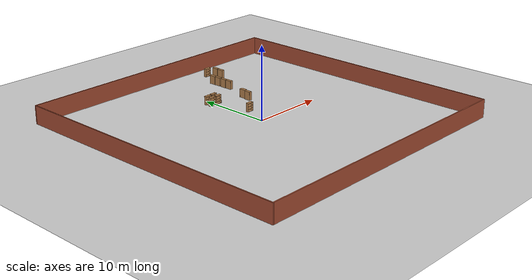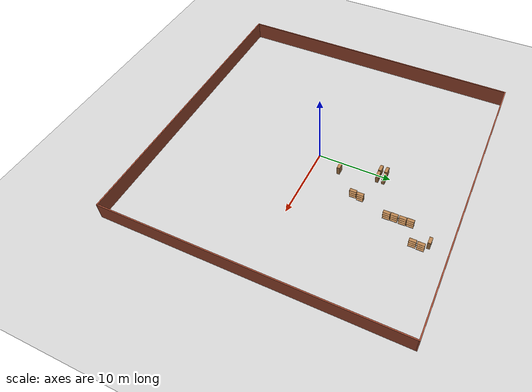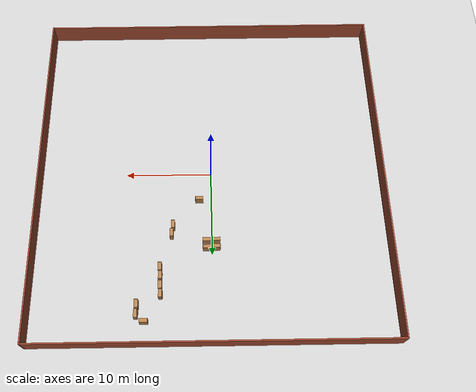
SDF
<sdf version="1.6">
 <world name="default">
  <model name="ground_plane">
   <static>1</static>
   <link name="link">
    <collision name="collision">
     <geometry><plane><normal>0 0 1</normal><size>100 100</size></plane></geometry>
     <surface>
      <contact><collide_bitmask>65535</collide_bitmask></contact>
      <friction><ode><mu>100</mu><mu2>50</mu2></ode></friction>
     </surface>
    </collision>
    <visual name="visual">
     <cast_shadows>0</cast_shadows>
     <geometry><plane><normal>0 0 1</normal><size>100 100</size></plane></geometry>
     <material>
      <script><uri>file://media/materials/scripts/gazebo.material</uri><name>Gazebo/Grey</name></script>
     </material>
    </visual>
   </link>
  </model>
  <model name="bookshelf_clone_clone_0_clone_clone_0_clone_2_clone">
   <static>1</static>
   <link name="link">
    <inertial><mass>1</mass></inertial>
    <collision name="back">
     <pose>0 0.005 0.6 0 -0 0</pose>
     <geometry><box><size>0.9 0.01 1.2</size></box></geometry>
    </collision>
    <visual name="visual1">
     <pose>0 0.005 0.6 0 -0 0</pose>
     <geometry><box><size>0.9 0.01 1.2</size></box></geometry>
     <material>
      <script><uri>file://media/materials/scripts/gazebo.material</uri><name>Gazebo/Wood</name></script>
     </material>
    </visual>
    <collision name="left_side">
     <pose>0.45 -0.195 0.6 0 -0 0</pose>
     <geometry><box><size>0.02 0.4 1.2</size></box></geometry>
    </collision>
    <visual name="visual2">
     <pose>0.45 -0.195 0.6 0 -0 0</pose>
     <geometry><box><size>0.02 0.4 1.2</size></box></geometry>
     <material>
      <script><uri>file://media/materials/scripts/gazebo.material</uri><name>Gazebo/Wood</name></script>
     </material>
    </visual>
    <collision name="right_side">
     <pose>-0.45 -0.195 0.6 0 -0 0</pose>
     <geometry><box><size>0.02 0.4 1.2</size></box></geometry>
    </collision>
    <visual name="visual3">
     <pose>-0.45 -0.195 0.6 0 -0 0</pose>
     <geometry><box><size>0.02 0.4 1.2</size></box></geometry>
     <material>
      <script><uri>file://media/materials/scripts/gazebo.material</uri><name>Gazebo/Wood</name></script>
     </material>
    </visual>
    <collision name="bottom">
     <pose>0 -0.195 0.03 0 -0 0</pose>
     <geometry><box><size>0.88 0.4 0.06</size></box></geometry>
    </collision>
    <visual name="visual4">
     <pose>0 -0.195 0.03 0 -0 0</pose>
     <geometry><box><size>0.88 0.4 0.06</size></box></geometry>
     <material>
      <script><uri>file://media/materials/scripts/gazebo.material</uri><name>Gazebo/Wood</name></script>
     </material>
    </visual>
    <collision name="top">
     <pose>0 -0.195 1.19 0 -0 0</pose>
     <geometry><box><size>0.88 0.4 0.02</size></box></geometry>
    </collision>
    <visual name="visual5">
     <pose>0 -0.195 1.19 0 -0 0</pose>
     <geometry><box><size>0.88 0.4 0.02</size></box></geometry>
     <material>
      <script><uri>file://media/materials/scripts/gazebo.material</uri><name>Gazebo/Wood</name></script>
     </material>
    </visual>
    <collision name="low_shelf">
     <pose>0 -0.195 0.43 0 -0 0</pose>
     <geometry><box><size>0.88 0.4 0.02</size></box></geometry>
    </collision>
    <visual name="visual6">
     <pose>0 -0.195 0.43 0 -0 0</pose>
     <geometry><box><size>0.88 0.4 0.02</size></box></geometry>
     <material>
      <script><uri>file://media/materials/scripts/gazebo.material</uri><name>Gazebo/Wood</name></script>
     </material>
    </visual>
    <collision name="high_shelf">
     <pose>0 -0.195 0.8 0 -0 0</pose>
     <geometry><box><size>0.88 0.4 0.02</size></box></geometry>
    </collision>
    <visual name="visual7">
     <pose>0 -0.195 0.8 0 -0 0</pose>
     <geometry><box><size>0.88 0.4 0.02</size></box></geometry>
     <material>
      <script><uri>file://media/materials/scripts/gazebo.material</uri><name>Gazebo/Wood</name></script>
     </material>
    </visual>
   </link>
   <pose>4.39037 7.62283 0 0 -0 1.58018</pose>
  </model>
  <model name="bookshelf_clone_clone_0_clone_clone_0_clone_2_clone_0">
   <static>1</static>
   <link name="link">
    <inertial><mass>1</mass></inertial>
    <collision name="back">
     <pose>0 0.005 0.6 0 -0 0</pose>
     <geometry><box><size>0.9 0.01 1.2</size></box></geometry>
    </collision>
    <visual name="visual1">
     <pose>0 0.005 0.6 0 -0 0</pose>
     <geometry><box><size>0.9 0.01 1.2</size></box></geometry>
     <material>
      <script><uri>file://media/materials/scripts/gazebo.material</uri><name>Gazebo/Wood</name></script>
     </material>
    </visual>
    <collision name="left_side">
     <pose>0.45 -0.195 0.6 0 -0 0</pose>
     <geometry><box><size>0.02 0.4 1.2</size></box></geometry>
    </collision>
    <visual name="visual2">
     <pose>0.45 -0.195 0.6 0 -0 0</pose>
     <geometry><box><size>0.02 0.4 1.2</size></box></geometry>
     <material>
      <script><uri>file://media/materials/scripts/gazebo.material</uri><name>Gazebo/Wood</name></script>
     </material>
    </visual>
    <collision name="right_side">
     <pose>-0.45 -0.195 0.6 0 -0 0</pose>
     <geometry><box><size>0.02 0.4 1.2</size></box></geometry>
    </collision>
    <visual name="visual3">
     <pose>-0.45 -0.195 0.6 0 -0 0</pose>
     <geometry><box><size>0.02 0.4 1.2</size></box></geometry>
     <material>
      <script><uri>file://media/materials/scripts/gazebo.material</uri><name>Gazebo/Wood</name></script>
     </material>
    </visual>
    <collision name="bottom">
     <pose>0 -0.195 0.03 0 -0 0</pose>
     <geometry><box><size>0.88 0.4 0.06</size></box></geometry>
    </collision>
    <visual name="visual4">
     <pose>0 -0.195 0.03 0 -0 0</pose>
     <geometry><box><size>0.88 0.4 0.06</size></box></geometry>
     <material>
      <script><uri>file://media/materials/scripts/gazebo.material</uri><name>Gazebo/Wood</name></script>
     </material>
    </visual>
    <collision name="top">
     <pose>0 -0.195 1.19 0 -0 0</pose>
     <geometry><box><size>0.88 0.4 0.02</size></box></geometry>
    </collision>
    <visual name="visual5">
     <pose>0 -0.195 1.19 0 -0 0</pose>
     <geometry><box><size>0.88 0.4 0.02</size></box></geometry>
     <material>
      <script><uri>file://media/materials/scripts/gazebo.material</uri><name>Gazebo/Wood</name></script>
     </material>
    </visual>
    <collision name="low_shelf">
     <pose>0 -0.195 0.43 0 -0 0</pose>
     <geometry><box><size>0.88 0.4 0.02</size></box></geometry>
    </collision>
    <visual name="visual6">
     <pose>0 -0.195 0.43 0 -0 0</pose>
     <geometry><box><size>0.88 0.4 0.02</size></box></geometry>
     <material>
      <script><uri>file://media/materials/scripts/gazebo.material</uri><name>Gazebo/Wood</name></script>
     </material>
    </visual>
    <collision name="high_shelf">
     <pose>0 -0.195 0.8 0 -0 0</pose>
     <geometry><box><size>0.88 0.4 0.02</size></box></geometry>
    </collision>
    <visual name="visual7">
     <pose>0 -0.195 0.8 0 -0 0</pose>
     <geometry><box><size>0.88 0.4 0.02</size></box></geometry>
     <material>
      <script><uri>file://media/materials/scripts/gazebo.material</uri><name>Gazebo/Wood</name></script>
     </material>
    </visual>
   </link>
   <pose>4.23583 6.61207 0 0 -0 1.58018</pose>
  </model>
  <model name="bookshelf_clone_clone_2_clone_2_clone">
   <static>1</static>
   <link name="link">
    <inertial><mass>1</mass></inertial>
    <collision name="back">
     <pose>0 0.005 0.6 0 -0 0</pose>
     <geometry><box><size>0.9 0.01 1.2</size></box></geometry>
    </collision>
    <visual name="visual1">
     <pose>0 0.005 0.6 0 -0 0</pose>
     <geometry><box><size>0.9 0.01 1.2</size></box></geometry>
     <material>
      <script><uri>file://media/materials/scripts/gazebo.material</uri><name>Gazebo/Wood</name></script>
     </material>
    </visual>
    <collision name="left_side">
     <pose>0.45 -0.195 0.6 0 -0 0</pose>
     <geometry><box><size>0.02 0.4 1.2</size></box></geometry>
    </collision>
    <visual name="visual2">
     <pose>0.45 -0.195 0.6 0 -0 0</pose>
     <geometry><box><size>0.02 0.4 1.2</size></box></geometry>
     <material>
      <script><uri>file://media/materials/scripts/gazebo.material</uri><name>Gazebo/Wood</name></script>
     </material>
    </visual>
    <collision name="right_side">
     <pose>-0.45 -0.195 0.6 0 -0 0</pose>
     <geometry><box><size>0.02 0.4 1.2</size></box></geometry>
    </collision>
    <visual name="visual3">
     <pose>-0.45 -0.195 0.6 0 -0 0</pose>
     <geometry><box><size>0.02 0.4 1.2</size></box></geometry>
     <material>
      <script><uri>file://media/materials/scripts/gazebo.material</uri><name>Gazebo/Wood</name></script>
     </material>
    </visual>
    <collision name="bottom">
     <pose>0 -0.195 0.03 0 -0 0</pose>
     <geometry><box><size>0.88 0.4 0.06</size></box></geometry>
    </collision>
    <visual name="visual4">
     <pose>0 -0.195 0.03 0 -0 0</pose>
     <geometry><box><size>0.88 0.4 0.06</size></box></geometry>
     <material>
      <script><uri>file://media/materials/scripts/gazebo.material</uri><name>Gazebo/Wood</name></script>
     </material>
    </visual>
    <collision name="top">
     <pose>0 -0.195 1.19 0 -0 0</pose>
     <geometry><box><size>0.88 0.4 0.02</size></box></geometry>
    </collision>
    <visual name="visual5">
     <pose>0 -0.195 1.19 0 -0 0</pose>
     <geometry><box><size>0.88 0.4 0.02</size></box></geometry>
     <material>
      <script><uri>file://media/materials/scripts/gazebo.material</uri><name>Gazebo/Wood</name></script>
     </material>
    </visual>
    <collision name="low_shelf">
     <pose>0 -0.195 0.43 0 -0 0</pose>
     <geometry><box><size>0.88 0.4 0.02</size></box></geometry>
    </collision>
    <visual name="visual6">
     <pose>0 -0.195 0.43 0 -0 0</pose>
     <geometry><box><size>0.88 0.4 0.02</size></box></geometry>
     <material>
      <script><uri>file://media/materials/scripts/gazebo.material</uri><name>Gazebo/Wood</name></script>
     </material>
    </visual>
    <collision name="high_shelf">
     <pose>0 -0.195 0.8 0 -0 0</pose>
     <geometry><box><size>0.88 0.4 0.02</size></box></geometry>
    </collision>
    <visual name="visual7">
     <pose>0 -0.195 0.8 0 -0 0</pose>
     <geometry><box><size>0.88 0.4 0.02</size></box></geometry>
     <material>
      <script><uri>file://media/materials/scripts/gazebo.material</uri><name>Gazebo/Wood</name></script>
     </material>
    </visual>
   </link>
   <pose>0.595816 9.5427 0 0 -0 0</pose>
  </model>
  <model name="bookshelf_clone_clone_2_clone_2_clone_0">
   <static>1</static>
   <link name="link">
    <inertial><mass>1</mass></inertial>
    <collision name="back">
     <pose>0 0.005 0.6 0 -0 0</pose>
     <geometry><box><size>0.9 0.01 1.2</size></box></geometry>
    </collision>
    <visual name="visual1">
     <pose>0 0.005 0.6 0 -0 0</pose>
     <geometry><box><size>0.9 0.01 1.2</size></box></geometry>
     <material>
      <script><uri>file://media/materials/scripts/gazebo.material</uri><name>Gazebo/Wood</name></script>
     </material>
    </visual>
    <collision name="left_side">
     <pose>0.45 -0.195 0.6 0 -0 0</pose>
     <geometry><box><size>0.02 0.4 1.2</size></box></geometry>
    </collision>
    <visual name="visual2">
     <pose>0.45 -0.195 0.6 0 -0 0</pose>
     <geometry><box><size>0.02 0.4 1.2</size></box></geometry>
     <material>
      <script><uri>file://media/materials/scripts/gazebo.material</uri><name>Gazebo/Wood</name></script>
     </material>
    </visual>
    <collision name="right_side">
     <pose>-0.45 -0.195 0.6 0 -0 0</pose>
     <geometry><box><size>0.02 0.4 1.2</size></box></geometry>
    </collision>
    <visual name="visual3">
     <pose>-0.45 -0.195 0.6 0 -0 0</pose>
     <geometry><box><size>0.02 0.4 1.2</size></box></geometry>
     <material>
      <script><uri>file://media/materials/scripts/gazebo.material</uri><name>Gazebo/Wood</name></script>
     </material>
    </visual>
    <collision name="bottom">
     <pose>0 -0.195 0.03 0 -0 0</pose>
     <geometry><box><size>0.88 0.4 0.06</size></box></geometry>
    </collision>
    <visual name="visual4">
     <pose>0 -0.195 0.03 0 -0 0</pose>
     <geometry><box><size>0.88 0.4 0.06</size></box></geometry>
     <material>
      <script><uri>file://media/materials/scripts/gazebo.material</uri><name>Gazebo/Wood</name></script>
     </material>
    </visual>
    <collision name="top">
     <pose>0 -0.195 1.19 0 -0 0</pose>
     <geometry><box><size>0.88 0.4 0.02</size></box></geometry>
    </collision>
    <visual name="visual5">
     <pose>0 -0.195 1.19 0 -0 0</pose>
     <geometry><box><size>0.88 0.4 0.02</size></box></geometry>
     <material>
      <script><uri>file://media/materials/scripts/gazebo.material</uri><name>Gazebo/Wood</name></script>
     </material>
    </visual>
    <collision name="low_shelf">
     <pose>0 -0.195 0.43 0 -0 0</pose>
     <geometry><box><size>0.88 0.4 0.02</size></box></geometry>
    </collision>
    <visual name="visual6">
     <pose>0 -0.195 0.43 0 -0 0</pose>
     <geometry><box><size>0.88 0.4 0.02</size></box></geometry>
     <material>
      <script><uri>file://media/materials/scripts/gazebo.material</uri><name>Gazebo/Wood</name></script>
     </material>
    </visual>
    <collision name="high_shelf">
     <pose>0 -0.195 0.8 0 -0 0</pose>
     <geometry><box><size>0.88 0.4 0.02</size></box></geometry>
    </collision>
    <visual name="visual7">
     <pose>0 -0.195 0.8 0 -0 0</pose>
     <geometry><box><size>0.88 0.4 0.02</size></box></geometry>
     <material>
      <script><uri>file://media/materials/scripts/gazebo.material</uri><name>Gazebo/Wood</name></script>
     </material>
    </visual>
   </link>
   <pose>0.618675 8.70804 0 0 -0 0</pose>
  </model>
  <model name="bookshelf_clone_clone_2_clone_2_clone_1">
   <static>1</static>
   <link name="link">
    <inertial><mass>1</mass></inertial>
    <collision name="back">
     <pose>0 0.005 0.6 0 -0 0</pose>
     <geometry><box><size>0.9 0.01 1.2</size></box></geometry>
    </collision>
    <visual name="visual1">
     <pose>0 0.005 0.6 0 -0 0</pose>
     <geometry><box><size>0.9 0.01 1.2</size></box></geometry>
     <material>
      <script><uri>file://media/materials/scripts/gazebo.material</uri><name>Gazebo/Wood</name></script>
     </material>
    </visual>
    <collision name="left_side">
     <pose>0.45 -0.195 0.6 0 -0 0</pose>
     <geometry><box><size>0.02 0.4 1.2</size></box></geometry>
    </collision>
    <visual name="visual2">
     <pose>0.45 -0.195 0.6 0 -0 0</pose>
     <geometry><box><size>0.02 0.4 1.2</size></box></geometry>
     <material>
      <script><uri>file://media/materials/scripts/gazebo.material</uri><name>Gazebo/Wood</name></script>
     </material>
    </visual>
    <collision name="right_side">
     <pose>-0.45 -0.195 0.6 0 -0 0</pose>
     <geometry><box><size>0.02 0.4 1.2</size></box></geometry>
    </collision>
    <visual name="visual3">
     <pose>-0.45 -0.195 0.6 0 -0 0</pose>
     <geometry><box><size>0.02 0.4 1.2</size></box></geometry>
     <material>
      <script><uri>file://media/materials/scripts/gazebo.material</uri><name>Gazebo/Wood</name></script>
     </material>
    </visual>
    <collision name="bottom">
     <pose>0 -0.195 0.03 0 -0 0</pose>
     <geometry><box><size>0.88 0.4 0.06</size></box></geometry>
    </collision>
    <visual name="visual4">
     <pose>0 -0.195 0.03 0 -0 0</pose>
     <geometry><box><size>0.88 0.4 0.06</size></box></geometry>
     <material>
      <script><uri>file://media/materials/scripts/gazebo.material</uri><name>Gazebo/Wood</name></script>
     </material>
    </visual>
    <collision name="top">
     <pose>0 -0.195 1.19 0 -0 0</pose>
     <geometry><box><size>0.88 0.4 0.02</size></box></geometry>
    </collision>
    <visual name="visual5">
     <pose>0 -0.195 1.19 0 -0 0</pose>
     <geometry><box><size>0.88 0.4 0.02</size></box></geometry>
     <material>
      <script><uri>file://media/materials/scripts/gazebo.material</uri><name>Gazebo/Wood</name></script>
     </material>
    </visual>
    <collision name="low_shelf">
     <pose>0 -0.195 0.43 0 -0 0</pose>
     <geometry><box><size>0.88 0.4 0.02</size></box></geometry>
    </collision>
    <visual name="visual6">
     <pose>0 -0.195 0.43 0 -0 0</pose>
     <geometry><box><size>0.88 0.4 0.02</size></box></geometry>
     <material>
      <script><uri>file://media/materials/scripts/gazebo.material</uri><name>Gazebo/Wood</name></script>
     </material>
    </visual>
    <collision name="high_shelf">
     <pose>0 -0.195 0.8 0 -0 0</pose>
     <geometry><box><size>0.88 0.4 0.02</size></box></geometry>
    </collision>
    <visual name="visual7">
     <pose>0 -0.195 0.8 0 -0 0</pose>
     <geometry><box><size>0.88 0.4 0.02</size></box></geometry>
     <material>
      <script><uri>file://media/materials/scripts/gazebo.material</uri><name>Gazebo/Wood</name></script>
     </material>
    </visual>
   </link>
   <pose>-0.446676 9.4842 0 0 -0 0</pose>
  </model>
  <model name="bookshelf_clone_clone_2_clone_2_clone_2">
   <static>1</static>
   <link name="link">
    <inertial><mass>1</mass></inertial>
    <collision name="back">
     <pose>0 0.005 0.6 0 -0 0</pose>
     <geometry><box><size>0.9 0.01 1.2</size></box></geometry>
    </collision>
    <visual name="visual1">
     <pose>0 0.005 0.6 0 -0 0</pose>
     <geometry><box><size>0.9 0.01 1.2</size></box></geometry>
     <material>
      <script><uri>file://media/materials/scripts/gazebo.material</uri><name>Gazebo/Wood</name></script>
     </material>
    </visual>
    <collision name="left_side">
     <pose>0.45 -0.195 0.6 0 -0 0</pose>
     <geometry><box><size>0.02 0.4 1.2</size></box></geometry>
    </collision>
    <visual name="visual2">
     <pose>0.45 -0.195 0.6 0 -0 0</pose>
     <geometry><box><size>0.02 0.4 1.2</size></box></geometry>
     <material>
      <script><uri>file://media/materials/scripts/gazebo.material</uri><name>Gazebo/Wood</name></script>
     </material>
    </visual>
    <collision name="right_side">
     <pose>-0.45 -0.195 0.6 0 -0 0</pose>
     <geometry><box><size>0.02 0.4 1.2</size></box></geometry>
    </collision>
    <visual name="visual3">
     <pose>-0.45 -0.195 0.6 0 -0 0</pose>
     <geometry><box><size>0.02 0.4 1.2</size></box></geometry>
     <material>
      <script><uri>file://media/materials/scripts/gazebo.material</uri><name>Gazebo/Wood</name></script>
     </material>
    </visual>
    <collision name="bottom">
     <pose>0 -0.195 0.03 0 -0 0</pose>
     <geometry><box><size>0.88 0.4 0.06</size></box></geometry>
    </collision>
    <visual name="visual4">
     <pose>0 -0.195 0.03 0 -0 0</pose>
     <geometry><box><size>0.88 0.4 0.06</size></box></geometry>
     <material>
      <script><uri>file://media/materials/scripts/gazebo.material</uri><name>Gazebo/Wood</name></script>
     </material>
    </visual>
    <collision name="top">
     <pose>0 -0.195 1.19 0 -0 0</pose>
     <geometry><box><size>0.88 0.4 0.02</size></box></geometry>
    </collision>
    <visual name="visual5">
     <pose>0 -0.195 1.19 0 -0 0</pose>
     <geometry><box><size>0.88 0.4 0.02</size></box></geometry>
     <material>
      <script><uri>file://media/materials/scripts/gazebo.material</uri><name>Gazebo/Wood</name></script>
     </material>
    </visual>
    <collision name="low_shelf">
     <pose>0 -0.195 0.43 0 -0 0</pose>
     <geometry><box><size>0.88 0.4 0.02</size></box></geometry>
    </collision>
    <visual name="visual6">
     <pose>0 -0.195 0.43 0 -0 0</pose>
     <geometry><box><size>0.88 0.4 0.02</size></box></geometry>
     <material>
      <script><uri>file://media/materials/scripts/gazebo.material</uri><name>Gazebo/Wood</name></script>
     </material>
    </visual>
    <collision name="high_shelf">
     <pose>0 -0.195 0.8 0 -0 0</pose>
     <geometry><box><size>0.88 0.4 0.02</size></box></geometry>
    </collision>
    <visual name="visual7">
     <pose>0 -0.195 0.8 0 -0 0</pose>
     <geometry><box><size>0.88 0.4 0.02</size></box></geometry>
     <material>
      <script><uri>file://media/materials/scripts/gazebo.material</uri><name>Gazebo/Wood</name></script>
     </material>
    </visual>
   </link>
   <pose>-0.454479 8.67887 0 0 -0 0</pose>
  </model>
  <model name="bookshelf_clone_clone_2_clone_2_clone_0_clone">
   <static>1</static>
   <link name="link">
    <inertial><mass>1</mass></inertial>
    <collision name="back">
     <pose>0 0.005 0.6 0 -0 0</pose>
     <geometry><box><size>0.9 0.01 1.2</size></box></geometry>
    </collision>
    <visual name="visual1">
     <pose>0 0.005 0.6 0 -0 0</pose>
     <geometry><box><size>0.9 0.01 1.2</size></box></geometry>
     <material>
      <script><uri>file://media/materials/scripts/gazebo.material</uri><name>Gazebo/Wood</name></script>
     </material>
    </visual>
    <collision name="left_side">
     <pose>0.45 -0.195 0.6 0 -0 0</pose>
     <geometry><box><size>0.02 0.4 1.2</size></box></geometry>
    </collision>
    <visual name="visual2">
     <pose>0.45 -0.195 0.6 0 -0 0</pose>
     <geometry><box><size>0.02 0.4 1.2</size></box></geometry>
     <material>
      <script><uri>file://media/materials/scripts/gazebo.material</uri><name>Gazebo/Wood</name></script>
     </material>
    </visual>
    <collision name="right_side">
     <pose>-0.45 -0.195 0.6 0 -0 0</pose>
     <geometry><box><size>0.02 0.4 1.2</size></box></geometry>
    </collision>
    <visual name="visual3">
     <pose>-0.45 -0.195 0.6 0 -0 0</pose>
     <geometry><box><size>0.02 0.4 1.2</size></box></geometry>
     <material>
      <script><uri>file://media/materials/scripts/gazebo.material</uri><name>Gazebo/Wood</name></script>
     </material>
    </visual>
    <collision name="bottom">
     <pose>0 -0.195 0.03 0 -0 0</pose>
     <geometry><box><size>0.88 0.4 0.06</size></box></geometry>
    </collision>
    <visual name="visual4">
     <pose>0 -0.195 0.03 0 -0 0</pose>
     <geometry><box><size>0.88 0.4 0.06</size></box></geometry>
     <material>
      <script><uri>file://media/materials/scripts/gazebo.material</uri><name>Gazebo/Wood</name></script>
     </material>
    </visual>
    <collision name="top">
     <pose>0 -0.195 1.19 0 -0 0</pose>
     <geometry><box><size>0.88 0.4 0.02</size></box></geometry>
    </collision>
    <visual name="visual5">
     <pose>0 -0.195 1.19 0 -0 0</pose>
     <geometry><box><size>0.88 0.4 0.02</size></box></geometry>
     <material>
      <script><uri>file://media/materials/scripts/gazebo.material</uri><name>Gazebo/Wood</name></script>
     </material>
    </visual>
    <collision name="low_shelf">
     <pose>0 -0.195 0.43 0 -0 0</pose>
     <geometry><box><size>0.88 0.4 0.02</size></box></geometry>
    </collision>
    <visual name="visual6">
     <pose>0 -0.195 0.43 0 -0 0</pose>
     <geometry><box><size>0.88 0.4 0.02</size></box></geometry>
     <material>
      <script><uri>file://media/materials/scripts/gazebo.material</uri><name>Gazebo/Wood</name></script>
     </material>
    </visual>
    <collision name="high_shelf">
     <pose>0 -0.195 0.8 0 -0 0</pose>
     <geometry><box><size>0.88 0.4 0.02</size></box></geometry>
    </collision>
    <visual name="visual7">
     <pose>0 -0.195 0.8 0 -0 0</pose>
     <geometry><box><size>0.88 0.4 0.02</size></box></geometry>
     <material>
      <script><uri>file://media/materials/scripts/gazebo.material</uri><name>Gazebo/Wood</name></script>
     </material>
    </visual>
   </link>
   <pose>1.41081 3.66672 0 0 -0 0</pose>
  </model>
  <model name="bookshelf_clone_clone_0_clone_clone_0_clone_5_clone_clone_clone_4_clone_2">
   <static>1</static>
   <link name="link">
    <inertial><mass>1</mass></inertial>
    <collision name="back">
     <pose>0 0.005 0.6 0 -0 0</pose>
     <geometry><box><size>0.9 0.01 1.2</size></box></geometry>
    </collision>
    <visual name="visual1">
     <pose>0 0.005 0.6 0 -0 0</pose>
     <geometry><box><size>0.9 0.01 1.2</size></box></geometry>
     <material>
      <script><uri>file://media/materials/scripts/gazebo.material</uri><name>Gazebo/Wood</name></script>
     </material>
    </visual>
    <collision name="left_side">
     <pose>0.45 -0.195 0.6 0 -0 0</pose>
     <geometry><box><size>0.02 0.4 1.2</size></box></geometry>
    </collision>
    <visual name="visual2">
     <pose>0.45 -0.195 0.6 0 -0 0</pose>
     <geometry><box><size>0.02 0.4 1.2</size></box></geometry>
     <material>
      <script><uri>file://media/materials/scripts/gazebo.material</uri><name>Gazebo/Wood</name></script>
     </material>
    </visual>
    <collision name="right_side">
     <pose>-0.45 -0.195 0.6 0 -0 0</pose>
     <geometry><box><size>0.02 0.4 1.2</size></box></geometry>
    </collision>
    <visual name="visual3">
     <pose>-0.45 -0.195 0.6 0 -0 0</pose>
     <geometry><box><size>0.02 0.4 1.2</size></box></geometry>
     <material>
      <script><uri>file://media/materials/scripts/gazebo.material</uri><name>Gazebo/Wood</name></script>
     </material>
    </visual>
    <collision name="bottom">
     <pose>0 -0.195 0.03 0 -0 0</pose>
     <geometry><box><size>0.88 0.4 0.06</size></box></geometry>
    </collision>
    <visual name="visual4">
     <pose>0 -0.195 0.03 0 -0 0</pose>
     <geometry><box><size>0.88 0.4 0.06</size></box></geometry>
     <material>
      <script><uri>file://media/materials/scripts/gazebo.material</uri><name>Gazebo/Wood</name></script>
     </material>
    </visual>
    <collision name="top">
     <pose>0 -0.195 1.19 0 -0 0</pose>
     <geometry><box><size>0.88 0.4 0.02</size></box></geometry>
    </collision>
    <visual name="visual5">
     <pose>0 -0.195 1.19 0 -0 0</pose>
     <geometry><box><size>0.88 0.4 0.02</size></box></geometry>
     <material>
      <script><uri>file://media/materials/scripts/gazebo.material</uri><name>Gazebo/Wood</name></script>
     </material>
    </visual>
    <collision name="low_shelf">
     <pose>0 -0.195 0.43 0 -0 0</pose>
     <geometry><box><size>0.88 0.4 0.02</size></box></geometry>
    </collision>
    <visual name="visual6">
     <pose>0 -0.195 0.43 0 -0 0</pose>
     <geometry><box><size>0.88 0.4 0.02</size></box></geometry>
     <material>
      <script><uri>file://media/materials/scripts/gazebo.material</uri><name>Gazebo/Wood</name></script>
     </material>
    </visual>
    <collision name="high_shelf">
     <pose>0 -0.195 0.8 0 -0 0</pose>
     <geometry><box><size>0.88 0.4 0.02</size></box></geometry>
    </collision>
    <visual name="visual7">
     <pose>0 -0.195 0.8 0 -0 0</pose>
     <geometry><box><size>0.88 0.4 0.02</size></box></geometry>
     <material>
      <script><uri>file://media/materials/scripts/gazebo.material</uri><name>Gazebo/Wood</name></script>
     </material>
    </visual>
   </link>
   <pose>5.6324 11.5384 0 0 -0 1.58018</pose>
  </model>
  <model name="bookshelf_clone_clone_0_clone_clone_0_clone_5_clone_clone_clone_4_clone_3">
   <static>1</static>
   <link name="link">
    <inertial><mass>1</mass></inertial>
    <collision name="back">
     <pose>0 0.005 0.6 0 -0 0</pose>
     <geometry><box><size>0.9 0.01 1.2</size></box></geometry>
    </collision>
    <visual name="visual1">
     <pose>0 0.005 0.6 0 -0 0</pose>
     <geometry><box><size>0.9 0.01 1.2</size></box></geometry>
     <material>
      <script><uri>file://media/materials/scripts/gazebo.material</uri><name>Gazebo/Wood</name></script>
     </material>
    </visual>
    <collision name="left_side">
     <pose>0.45 -0.195 0.6 0 -0 0</pose>
     <geometry><box><size>0.02 0.4 1.2</size></box></geometry>
    </collision>
    <visual name="visual2">
     <pose>0.45 -0.195 0.6 0 -0 0</pose>
     <geometry><box><size>0.02 0.4 1.2</size></box></geometry>
     <material>
      <script><uri>file://media/materials/scripts/gazebo.material</uri><name>Gazebo/Wood</name></script>
     </material>
    </visual>
    <collision name="right_side">
     <pose>-0.45 -0.195 0.6 0 -0 0</pose>
     <geometry><box><size>0.02 0.4 1.2</size></box></geometry>
    </collision>
    <visual name="visual3">
     <pose>-0.45 -0.195 0.6 0 -0 0</pose>
     <geometry><box><size>0.02 0.4 1.2</size></box></geometry>
     <material>
      <script><uri>file://media/materials/scripts/gazebo.material</uri><name>Gazebo/Wood</name></script>
     </material>
    </visual>
    <collision name="bottom">
     <pose>0 -0.195 0.03 0 -0 0</pose>
     <geometry><box><size>0.88 0.4 0.06</size></box></geometry>
    </collision>
    <visual name="visual4">
     <pose>0 -0.195 0.03 0 -0 0</pose>
     <geometry><box><size>0.88 0.4 0.06</size></box></geometry>
     <material>
      <script><uri>file://media/materials/scripts/gazebo.material</uri><name>Gazebo/Wood</name></script>
     </material>
    </visual>
    <collision name="top">
     <pose>0 -0.195 1.19 0 -0 0</pose>
     <geometry><box><size>0.88 0.4 0.02</size></box></geometry>
    </collision>
    <visual name="visual5">
     <pose>0 -0.195 1.19 0 -0 0</pose>
     <geometry><box><size>0.88 0.4 0.02</size></box></geometry>
     <material>
      <script><uri>file://media/materials/scripts/gazebo.material</uri><name>Gazebo/Wood</name></script>
     </material>
    </visual>
    <collision name="low_shelf">
     <pose>0 -0.195 0.43 0 -0 0</pose>
     <geometry><box><size>0.88 0.4 0.02</size></box></geometry>
    </collision>
    <visual name="visual6">
     <pose>0 -0.195 0.43 0 -0 0</pose>
     <geometry><box><size>0.88 0.4 0.02</size></box></geometry>
     <material>
      <script><uri>file://media/materials/scripts/gazebo.material</uri><name>Gazebo/Wood</name></script>
     </material>
    </visual>
    <collision name="high_shelf">
     <pose>0 -0.195 0.8 0 -0 0</pose>
     <geometry><box><size>0.88 0.4 0.02</size></box></geometry>
    </collision>
    <visual name="visual7">
     <pose>0 -0.195 0.8 0 -0 0</pose>
     <geometry><box><size>0.88 0.4 0.02</size></box></geometry>
     <material>
      <script><uri>file://media/materials/scripts/gazebo.material</uri><name>Gazebo/Wood</name></script>
     </material>
    </visual>
   </link>
   <pose>5.59485 12.5113 0 0 -0 1.58018</pose>
  </model>
  <model name="bookshelf_clone_clone_0_clone_clone_0_clone_5_clone_clone_clone_4_clone_4">
   <static>1</static>
   <link name="link">
    <inertial><mass>1</mass></inertial>
    <collision name="back">
     <pose>0 0.005 0.6 0 -0 0</pose>
     <geometry><box><size>0.9 0.01 1.2</size></box></geometry>
    </collision>
    <visual name="visual1">
     <pose>0 0.005 0.6 0 -0 0</pose>
     <geometry><box><size>0.9 0.01 1.2</size></box></geometry>
     <material>
      <script><uri>file://media/materials/scripts/gazebo.material</uri><name>Gazebo/Wood</name></script>
     </material>
    </visual>
    <collision name="left_side">
     <pose>0.45 -0.195 0.6 0 -0 0</pose>
     <geometry><box><size>0.02 0.4 1.2</size></box></geometry>
    </collision>
    <visual name="visual2">
     <pose>0.45 -0.195 0.6 0 -0 0</pose>
     <geometry><box><size>0.02 0.4 1.2</size></box></geometry>
     <material>
      <script><uri>file://media/materials/scripts/gazebo.material</uri><name>Gazebo/Wood</name></script>
     </material>
    </visual>
    <collision name="right_side">
     <pose>-0.45 -0.195 0.6 0 -0 0</pose>
     <geometry><box><size>0.02 0.4 1.2</size></box></geometry>
    </collision>
    <visual name="visual3">
     <pose>-0.45 -0.195 0.6 0 -0 0</pose>
     <geometry><box><size>0.02 0.4 1.2</size></box></geometry>
     <material>
      <script><uri>file://media/materials/scripts/gazebo.material</uri><name>Gazebo/Wood</name></script>
     </material>
    </visual>
    <collision name="bottom">
     <pose>0 -0.195 0.03 0 -0 0</pose>
     <geometry><box><size>0.88 0.4 0.06</size></box></geometry>
    </collision>
    <visual name="visual4">
     <pose>0 -0.195 0.03 0 -0 0</pose>
     <geometry><box><size>0.88 0.4 0.06</size></box></geometry>
     <material>
      <script><uri>file://media/materials/scripts/gazebo.material</uri><name>Gazebo/Wood</name></script>
     </material>
    </visual>
    <collision name="top">
     <pose>0 -0.195 1.19 0 -0 0</pose>
     <geometry><box><size>0.88 0.4 0.02</size></box></geometry>
    </collision>
    <visual name="visual5">
     <pose>0 -0.195 1.19 0 -0 0</pose>
     <geometry><box><size>0.88 0.4 0.02</size></box></geometry>
     <material>
      <script><uri>file://media/materials/scripts/gazebo.material</uri><name>Gazebo/Wood</name></script>
     </material>
    </visual>
    <collision name="low_shelf">
     <pose>0 -0.195 0.43 0 -0 0</pose>
     <geometry><box><size>0.88 0.4 0.02</size></box></geometry>
    </collision>
    <visual name="visual6">
     <pose>0 -0.195 0.43 0 -0 0</pose>
     <geometry><box><size>0.88 0.4 0.02</size></box></geometry>
     <material>
      <script><uri>file://media/materials/scripts/gazebo.material</uri><name>Gazebo/Wood</name></script>
     </material>
    </visual>
    <collision name="high_shelf">
     <pose>0 -0.195 0.8 0 -0 0</pose>
     <geometry><box><size>0.88 0.4 0.02</size></box></geometry>
    </collision>
    <visual name="visual7">
     <pose>0 -0.195 0.8 0 -0 0</pose>
     <geometry><box><size>0.88 0.4 0.02</size></box></geometry>
     <material>
      <script><uri>file://media/materials/scripts/gazebo.material</uri><name>Gazebo/Wood</name></script>
     </material>
    </visual>
   </link>
   <pose>5.59293 13.5784 0 0 -0 1.58018</pose>
  </model>
  <model name="bookshelf_clone_clone_0_clone_clone_0_clone_5_clone_clone_clone_4_clone_5">
   <static>1</static>
   <link name="link">
    <inertial><mass>1</mass></inertial>
    <collision name="back">
     <pose>0 0.005 0.6 0 -0 0</pose>
     <geometry><box><size>0.9 0.01 1.2</size></box></geometry>
    </collision>
    <visual name="visual1">
     <pose>0 0.005 0.6 0 -0 0</pose>
     <geometry><box><size>0.9 0.01 1.2</size></box></geometry>
     <material>
      <script><uri>file://media/materials/scripts/gazebo.material</uri><name>Gazebo/Wood</name></script>
     </material>
    </visual>
    <collision name="left_side">
     <pose>0.45 -0.195 0.6 0 -0 0</pose>
     <geometry><box><size>0.02 0.4 1.2</size></box></geometry>
    </collision>
    <visual name="visual2">
     <pose>0.45 -0.195 0.6 0 -0 0</pose>
     <geometry><box><size>0.02 0.4 1.2</size></box></geometry>
     <material>
      <script><uri>file://media/materials/scripts/gazebo.material</uri><name>Gazebo/Wood</name></script>
     </material>
    </visual>
    <collision name="right_side">
     <pose>-0.45 -0.195 0.6 0 -0 0</pose>
     <geometry><box><size>0.02 0.4 1.2</size></box></geometry>
    </collision>
    <visual name="visual3">
     <pose>-0.45 -0.195 0.6 0 -0 0</pose>
     <geometry><box><size>0.02 0.4 1.2</size></box></geometry>
     <material>
      <script><uri>file://media/materials/scripts/gazebo.material</uri><name>Gazebo/Wood</name></script>
     </material>
    </visual>
    <collision name="bottom">
     <pose>0 -0.195 0.03 0 -0 0</pose>
     <geometry><box><size>0.88 0.4 0.06</size></box></geometry>
    </collision>
    <visual name="visual4">
     <pose>0 -0.195 0.03 0 -0 0</pose>
     <geometry><box><size>0.88 0.4 0.06</size></box></geometry>
     <material>
      <script><uri>file://media/materials/scripts/gazebo.material</uri><name>Gazebo/Wood</name></script>
     </material>
    </visual>
    <collision name="top">
     <pose>0 -0.195 1.19 0 -0 0</pose>
     <geometry><box><size>0.88 0.4 0.02</size></box></geometry>
    </collision>
    <visual name="visual5">
     <pose>0 -0.195 1.19 0 -0 0</pose>
     <geometry><box><size>0.88 0.4 0.02</size></box></geometry>
     <material>
      <script><uri>file://media/materials/scripts/gazebo.material</uri><name>Gazebo/Wood</name></script>
     </material>
    </visual>
    <collision name="low_shelf">
     <pose>0 -0.195 0.43 0 -0 0</pose>
     <geometry><box><size>0.88 0.4 0.02</size></box></geometry>
    </collision>
    <visual name="visual6">
     <pose>0 -0.195 0.43 0 -0 0</pose>
     <geometry><box><size>0.88 0.4 0.02</size></box></geometry>
     <material>
      <script><uri>file://media/materials/scripts/gazebo.material</uri><name>Gazebo/Wood</name></script>
     </material>
    </visual>
    <collision name="high_shelf">
     <pose>0 -0.195 0.8 0 -0 0</pose>
     <geometry><box><size>0.88 0.4 0.02</size></box></geometry>
    </collision>
    <visual name="visual7">
     <pose>0 -0.195 0.8 0 -0 0</pose>
     <geometry><box><size>0.88 0.4 0.02</size></box></geometry>
     <material>
      <script><uri>file://media/materials/scripts/gazebo.material</uri><name>Gazebo/Wood</name></script>
     </material>
    </visual>
   </link>
   <pose>5.55387 14.5497 0 0 -0 1.58018</pose>
  </model>
  <model name="bookshelf_clone_clone_0_clone_clone_0_clone_5_clone_clone_clone_4_clone_5_clone">
   <static>1</static>
   <link name="link">
    <inertial><mass>1</mass></inertial>
    <collision name="back">
     <pose>0 0.005 0.6 0 -0 0</pose>
     <geometry><box><size>0.9 0.01 1.2</size></box></geometry>
    </collision>
    <visual name="visual1">
     <pose>0 0.005 0.6 0 -0 0</pose>
     <geometry><box><size>0.9 0.01 1.2</size></box></geometry>
     <material>
      <script><uri>file://media/materials/scripts/gazebo.material</uri><name>Gazebo/Wood</name></script>
     </material>
    </visual>
    <collision name="left_side">
     <pose>0.45 -0.195 0.6 0 -0 0</pose>
     <geometry><box><size>0.02 0.4 1.2</size></box></geometry>
    </collision>
    <visual name="visual2">
     <pose>0.45 -0.195 0.6 0 -0 0</pose>
     <geometry><box><size>0.02 0.4 1.2</size></box></geometry>
     <material>
      <script><uri>file://media/materials/scripts/gazebo.material</uri><name>Gazebo/Wood</name></script>
     </material>
    </visual>
    <collision name="right_side">
     <pose>-0.45 -0.195 0.6 0 -0 0</pose>
     <geometry><box><size>0.02 0.4 1.2</size></box></geometry>
    </collision>
    <visual name="visual3">
     <pose>-0.45 -0.195 0.6 0 -0 0</pose>
     <geometry><box><size>0.02 0.4 1.2</size></box></geometry>
     <material>
      <script><uri>file://media/materials/scripts/gazebo.material</uri><name>Gazebo/Wood</name></script>
     </material>
    </visual>
    <collision name="bottom">
     <pose>0 -0.195 0.03 0 -0 0</pose>
     <geometry><box><size>0.88 0.4 0.06</size></box></geometry>
    </collision>
    <visual name="visual4">
     <pose>0 -0.195 0.03 0 -0 0</pose>
     <geometry><box><size>0.88 0.4 0.06</size></box></geometry>
     <material>
      <script><uri>file://media/materials/scripts/gazebo.material</uri><name>Gazebo/Wood</name></script>
     </material>
    </visual>
    <collision name="top">
     <pose>0 -0.195 1.19 0 -0 0</pose>
     <geometry><box><size>0.88 0.4 0.02</size></box></geometry>
    </collision>
    <visual name="visual5">
     <pose>0 -0.195 1.19 0 -0 0</pose>
     <geometry><box><size>0.88 0.4 0.02</size></box></geometry>
     <material>
      <script><uri>file://media/materials/scripts/gazebo.material</uri><name>Gazebo/Wood</name></script>
     </material>
    </visual>
    <collision name="low_shelf">
     <pose>0 -0.195 0.43 0 -0 0</pose>
     <geometry><box><size>0.88 0.4 0.02</size></box></geometry>
    </collision>
    <visual name="visual6">
     <pose>0 -0.195 0.43 0 -0 0</pose>
     <geometry><box><size>0.88 0.4 0.02</size></box></geometry>
     <material>
      <script><uri>file://media/materials/scripts/gazebo.material</uri><name>Gazebo/Wood</name></script>
     </material>
    </visual>
    <collision name="high_shelf">
     <pose>0 -0.195 0.8 0 -0 0</pose>
     <geometry><box><size>0.88 0.4 0.02</size></box></geometry>
    </collision>
    <visual name="visual7">
     <pose>0 -0.195 0.8 0 -0 0</pose>
     <geometry><box><size>0.88 0.4 0.02</size></box></geometry>
     <material>
      <script><uri>file://media/materials/scripts/gazebo.material</uri><name>Gazebo/Wood</name></script>
     </material>
    </visual>
   </link>
   <pose>8.16625 16.6831 0 0 -0 1.58018</pose>
  </model>
  <model name="bookshelf_clone_clone_0_clone_clone_0_clone_5_clone_clone_clone_4_clone_5_clone_0">
   <static>1</static>
   <link name="link">
    <inertial><mass>1</mass></inertial>
    <collision name="back">
     <pose>0 0.005 0.6 0 -0 0</pose>
     <geometry><box><size>0.9 0.01 1.2</size></box></geometry>
    </collision>
    <visual name="visual1">
     <pose>0 0.005 0.6 0 -0 0</pose>
     <geometry><box><size>0.9 0.01 1.2</size></box></geometry>
     <material>
      <script><uri>file://media/materials/scripts/gazebo.material</uri><name>Gazebo/Wood</name></script>
     </material>
    </visual>
    <collision name="left_side">
     <pose>0.45 -0.195 0.6 0 -0 0</pose>
     <geometry><box><size>0.02 0.4 1.2</size></box></geometry>
    </collision>
    <visual name="visual2">
     <pose>0.45 -0.195 0.6 0 -0 0</pose>
     <geometry><box><size>0.02 0.4 1.2</size></box></geometry>
     <material>
      <script><uri>file://media/materials/scripts/gazebo.material</uri><name>Gazebo/Wood</name></script>
     </material>
    </visual>
    <collision name="right_side">
     <pose>-0.45 -0.195 0.6 0 -0 0</pose>
     <geometry><box><size>0.02 0.4 1.2</size></box></geometry>
    </collision>
    <visual name="visual3">
     <pose>-0.45 -0.195 0.6 0 -0 0</pose>
     <geometry><box><size>0.02 0.4 1.2</size></box></geometry>
     <material>
      <script><uri>file://media/materials/scripts/gazebo.material</uri><name>Gazebo/Wood</name></script>
     </material>
    </visual>
    <collision name="bottom">
     <pose>0 -0.195 0.03 0 -0 0</pose>
     <geometry><box><size>0.88 0.4 0.06</size></box></geometry>
    </collision>
    <visual name="visual4">
     <pose>0 -0.195 0.03 0 -0 0</pose>
     <geometry><box><size>0.88 0.4 0.06</size></box></geometry>
     <material>
      <script><uri>file://media/materials/scripts/gazebo.material</uri><name>Gazebo/Wood</name></script>
     </material>
    </visual>
    <collision name="top">
     <pose>0 -0.195 1.19 0 -0 0</pose>
     <geometry><box><size>0.88 0.4 0.02</size></box></geometry>
    </collision>
    <visual name="visual5">
     <pose>0 -0.195 1.19 0 -0 0</pose>
     <geometry><box><size>0.88 0.4 0.02</size></box></geometry>
     <material>
      <script><uri>file://media/materials/scripts/gazebo.material</uri><name>Gazebo/Wood</name></script>
     </material>
    </visual>
    <collision name="low_shelf">
     <pose>0 -0.195 0.43 0 -0 0</pose>
     <geometry><box><size>0.88 0.4 0.02</size></box></geometry>
    </collision>
    <visual name="visual6">
     <pose>0 -0.195 0.43 0 -0 0</pose>
     <geometry><box><size>0.88 0.4 0.02</size></box></geometry>
     <material>
      <script><uri>file://media/materials/scripts/gazebo.material</uri><name>Gazebo/Wood</name></script>
     </material>
    </visual>
    <collision name="high_shelf">
     <pose>0 -0.195 0.8 0 -0 0</pose>
     <geometry><box><size>0.88 0.4 0.02</size></box></geometry>
    </collision>
    <visual name="visual7">
     <pose>0 -0.195 0.8 0 -0 0</pose>
     <geometry><box><size>0.88 0.4 0.02</size></box></geometry>
     <material>
      <script><uri>file://media/materials/scripts/gazebo.material</uri><name>Gazebo/Wood</name></script>
     </material>
    </visual>
   </link>
   <pose>8.11895 15.6351 0 0 -0 1.58018</pose>
  </model>
  <model name="wall_40_0">
   <link name="Wall_0">
    <collision name="Wall_0_Collision">
     <geometry><box><size>40.15 0.15 2.5</size></box></geometry>
     <pose>0 0 1.25 0 -0 0</pose>
    </collision>
    <visual name="Wall_0_Visual">
     <pose>0 0 1.25 0 -0 0</pose>
     <geometry><box><size>40.15 0.15 2.5</size></box></geometry>
     <material>
      <script><uri>file://media/materials/scripts/gazebo.material</uri><name>Gazebo/Bricks</name></script>
      <ambient>1 1 1 1</ambient>
     </material>
     <meta><layer>0</layer></meta>
    </visual>
    <pose>0 20 0 0 -0 3.14159</pose>
   </link>
   <link name="Wall_2">
    <collision name="Wall_2_Collision">
     <geometry><box><size>40.15 0.15 2.5</size></box></geometry>
     <pose>0 0 1.25 0 -0 0</pose>
    </collision>
    <visual name="Wall_2_Visual">
     <pose>0 0 1.25 0 -0 0</pose>
     <geometry><box><size>40.15 0.15 2.5</size></box></geometry>
     <material>
      <script><uri>file://media/materials/scripts/gazebo.material</uri><name>Gazebo/Bricks</name></script>
      <ambient>1 1 1 1</ambient>
     </material>
     <meta><layer>0</layer></meta>
    </visual>
    <pose>-20 0 0 0 -0 -1.5708</pose>
   </link>
   <link name="Wall_4">
    <collision name="Wall_4_Collision">
     <geometry><box><size>40.15 0.15 2.5</size></box></geometry>
     <pose>0 0 1.25 0 -0 0</pose>
    </collision>
    <visual name="Wall_4_Visual">
     <pose>0 0 1.25 0 -0 0</pose>
     <geometry><box><size>40.15 0.15 2.5</size></box></geometry>
     <material>
      <script><uri>file://media/materials/scripts/gazebo.material</uri><name>Gazebo/Bricks</name></script>
      <ambient>1 1 1 1</ambient>
     </material>
     <meta><layer>0</layer></meta>
    </visual>
    <pose>0 -20 0 0 -0 3.14159</pose>
   </link>
   <link name="Wall_9">
    <collision name="Wall_9_Collision">
     <geometry><box><size>40.15 0.15 2.5</size></box></geometry>
     <pose>0 0 1.25 0 -0 0</pose>
    </collision>
    <visual name="Wall_9_Visual">
     <pose>0 0 1.25 0 -0 0</pose>
     <geometry><box><size>40.15 0.15 2.5</size></box></geometry>
     <material>
      <script><uri>file://media/materials/scripts/gazebo.material</uri><name>Gazebo/Bricks</name></script>
      <ambient>1 1 1 1</ambient>
     </material>
     <meta><layer>0</layer></meta>
    </visual>
    <pose>20 0 0 0 -0 1.5708</pose>
   </link>
   <static>1</static>
  </model>
  <model name="bookshelf_clone_clone_2_clone_3_clone">
   <static>1</static>
   <link name="link">
    <inertial><mass>1</mass></inertial>
    <collision name="back">
     <pose>0 0.005 0.6 0 -0 0</pose>
     <geometry><box><size>0.9 0.01 1.2</size></box></geometry>
    </collision>
    <visual name="visual1">
     <pose>0 0.005 0.6 0 -0 0</pose>
     <geometry><box><size>0.9 0.01 1.2</size></box></geometry>
     <material>
      <script><uri>file://media/materials/scripts/gazebo.material</uri><name>Gazebo/Wood</name></script>
     </material>
    </visual>
    <collision name="left_side">
     <pose>0.45 -0.195 0.6 0 -0 0</pose>
     <geometry><box><size>0.02 0.4 1.2</size></box></geometry>
    </collision>
    <visual name="visual2">
     <pose>0.45 -0.195 0.6 0 -0 0</pose>
     <geometry><box><size>0.02 0.4 1.2</size></box></geometry>
     <material>
      <script><uri>file://media/materials/scripts/gazebo.material</uri><name>Gazebo/Wood</name></script>
     </material>
    </visual>
    <collision name="right_side">
     <pose>-0.45 -0.195 0.6 0 -0 0</pose>
     <geometry><box><size>0.02 0.4 1.2</size></box></geometry>
    </collision>
    <visual name="visual3">
     <pose>-0.45 -0.195 0.6 0 -0 0</pose>
     <geometry><box><size>0.02 0.4 1.2</size></box></geometry>
     <material>
      <script><uri>file://media/materials/scripts/gazebo.material</uri><name>Gazebo/Wood</name></script>
     </material>
    </visual>
    <collision name="bottom">
     <pose>0 -0.195 0.03 0 -0 0</pose>
     <geometry><box><size>0.88 0.4 0.06</size></box></geometry>
    </collision>
    <visual name="visual4">
     <pose>0 -0.195 0.03 0 -0 0</pose>
     <geometry><box><size>0.88 0.4 0.06</size></box></geometry>
     <material>
      <script><uri>file://media/materials/scripts/gazebo.material</uri><name>Gazebo/Wood</name></script>
     </material>
    </visual>
    <collision name="top">
     <pose>0 -0.195 1.19 0 -0 0</pose>
     <geometry><box><size>0.88 0.4 0.02</size></box></geometry>
    </collision>
    <visual name="visual5">
     <pose>0 -0.195 1.19 0 -0 0</pose>
     <geometry><box><size>0.88 0.4 0.02</size></box></geometry>
     <material>
      <script><uri>file://media/materials/scripts/gazebo.material</uri><name>Gazebo/Wood</name></script>
     </material>
    </visual>
    <collision name="low_shelf">
     <pose>0 -0.195 0.43 0 -0 0</pose>
     <geometry><box><size>0.88 0.4 0.02</size></box></geometry>
    </collision>
    <visual name="visual6">
     <pose>0 -0.195 0.43 0 -0 0</pose>
     <geometry><box><size>0.88 0.4 0.02</size></box></geometry>
     <material>
      <script><uri>file://media/materials/scripts/gazebo.material</uri><name>Gazebo/Wood</name></script>
     </material>
    </visual>
    <collision name="high_shelf">
     <pose>0 -0.195 0.8 0 -0 0</pose>
     <geometry><box><size>0.88 0.4 0.02</size></box></geometry>
    </collision>
    <visual name="visual7">
     <pose>0 -0.195 0.8 0 -0 0</pose>
     <geometry><box><size>0.88 0.4 0.02</size></box></geometry>
     <material>
      <script><uri>file://media/materials/scripts/gazebo.material</uri><name>Gazebo/Wood</name></script>
     </material>
    </visual>
   </link>
   <pose>7.46816 17.6784 0 0 -0 0</pose>
  </model>
 </world>
</sdf>
